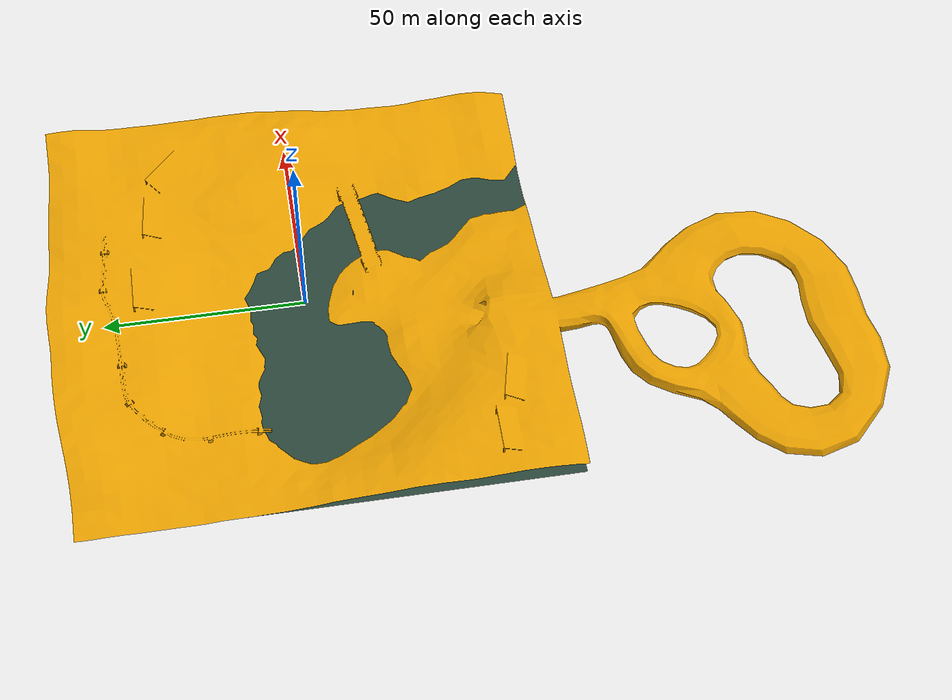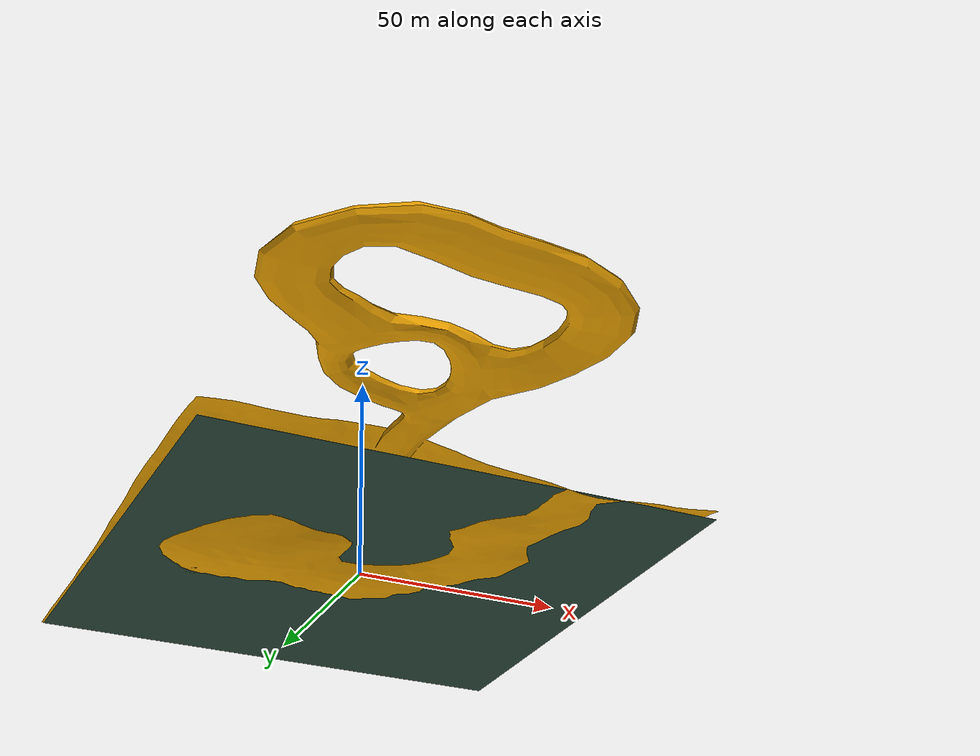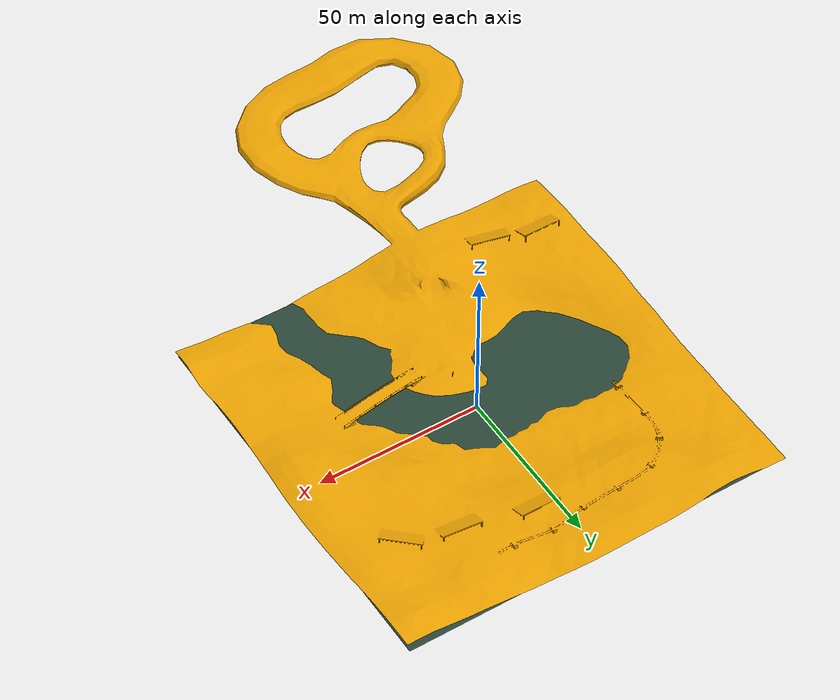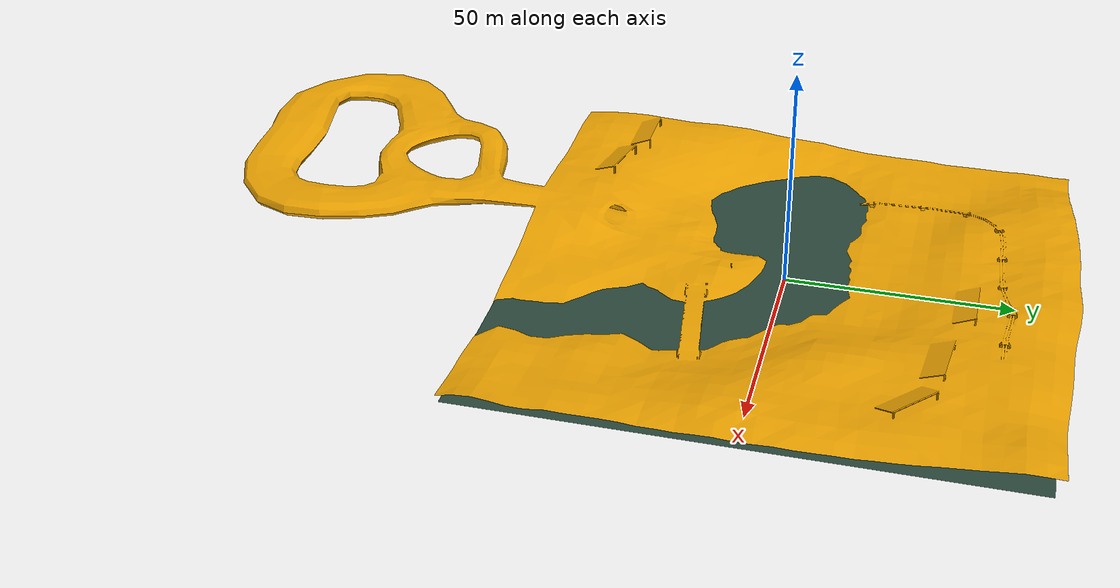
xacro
<?xml version="1.0"?>
<robot name="inspection_world" xmlns:xacro="http://www.ros.org/wiki/xacro">
  <link name="inspection_world_link">
    <inertial>
      <origin xyz="0 0 0" rpy="0 0 0"/>
      <mass value="1"/>
      <inertia ixx="1" ixy="0" ixz="0" iyy="1" iyz="0" izz="1"/>
    </inertial>
    <visual>
      <origin xyz="0 0 0" rpy="0 0 3.141592653589793"/>
      <geometry>
        <mesh filename="package://cpr_inspection_gazebo/meshes/inspection_world.dae" scale="2 2 1"/>
      </geometry>
    </visual>
    <visual>
      <origin xyz="0 0 0" rpy="0 0 3.141592653589793"/>
      <geometry>
        <mesh filename="package://cpr_inspection_gazebo/meshes/inspection_water.dae" scale="2 2 1"/>
      </geometry>
    </visual>
    <collision>
      <origin xyz="0 0 0" rpy="0 0 3.141592653589793"/>
      <geometry>
        <mesh filename="package://cpr_inspection_gazebo/meshes/inspection_world.dae" scale="2 2 1"/>
      </geometry>
      <surface>
        <friction>
          <ode>
            <mu>100</mu>
            <mu2>50</mu2>
          </ode>
        </friction>
      </surface>
    </collision>
  </link>

  <xacro:include filename="$(find cpr_accessories_gazebo)/urdf/base_station.urdf.xacro" />
  <xacro:cpr_base_station name="base_station" parent="inspection_world_link">
    <origin xyz="0 -12 1" rpy="0 0 0" />
  </xacro:cpr_base_station>

  <gazebo> <static>true</static></gazebo>
</robot>

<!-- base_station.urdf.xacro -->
<robot xmlns:xacro="http://wiki.ros.org/xacro" name="clearpath_base_station">
  <xacro:macro name="cpr_base_station" params="name parent *origin">
    <link name="${name}_link">
      <visual>
        <geometry>
          <mesh filename="package://cpr_accessories_gazebo/meshes/BaseStationWithTripod.dae" />
        </geometry>
      </visual>
      <collision>
        <geometry>
          <mesh filename="package://cpr_accessories_gazebo/meshes/BaseStationWithTripod.stl" />
        </geometry>
      </collision>
    </link>
    <joint name="${name}_joint" type="fixed">
      <parent link="${parent}" />
      <child link="${name}_link" />
      <xacro:insert_block name="origin" />
    </joint>
  </xacro:macro>
</robot>
